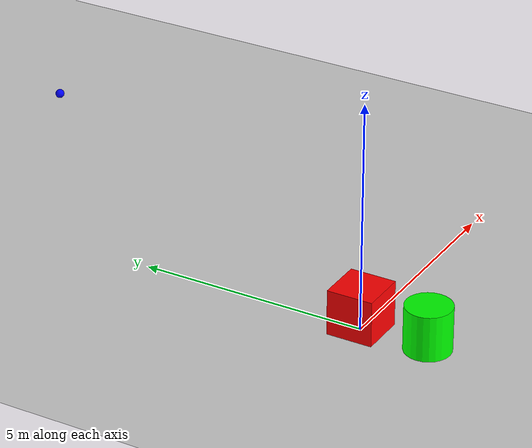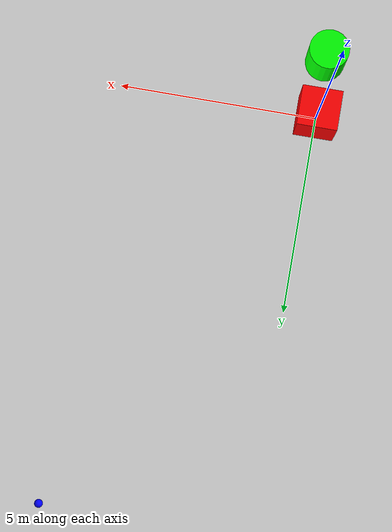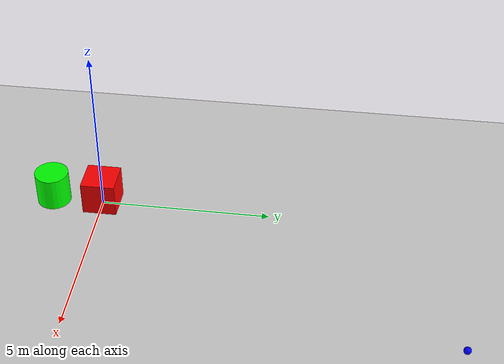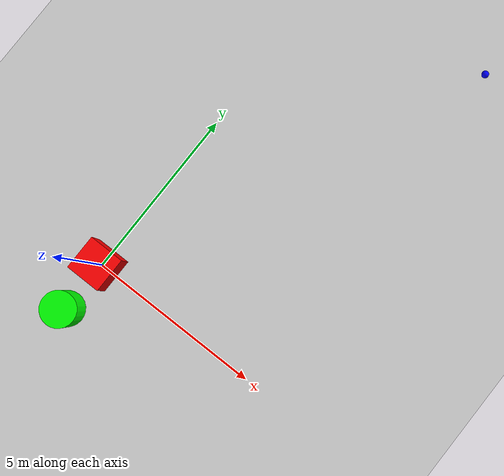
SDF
<?xml version="1.0" ?>
<!--

Try moving a model:

    ign service -s /world/shapes/set_pose --reqtype ignition.msgs.Pose --reptype ignition.msgs.Boolean --timeout 300 --req 'name: "box", position: {z: 5.0}'

-->
<sdf version="1.6">
  <world name="shapes">
    <physics name="1ms" type="ignored">
      <max_step_size>0.001</max_step_size>
      <real_time_factor>1.0</real_time_factor>
    </physics>
    <plugin
      filename="libignition-gazebo-physics-system.so"
      name="ignition::gazebo::systems::Physics">
    </plugin>
    <plugin
      filename="libignition-gazebo-user-commands-system.so"
      name="ignition::gazebo::systems::UserCommands">
    </plugin>
    <plugin
      filename="libignition-gazebo-scene-broadcaster-system.so"
      name="ignition::gazebo::systems::SceneBroadcaster">
    </plugin>

    <scene>
      <ambient>1.0 1.0 1.0</ambient>
      <background>0.8 0.8 0.8</background>
    </scene>

    <gui fullscreen="0">

      <!-- 3D scene -->
      <plugin filename="GzScene3D" name="3D View">
        <ignition-gui>
          <title>3D View</title>
          <property type="bool" key="showTitleBar">false</property>
          <property type="string" key="state">docked</property>
        </ignition-gui>

        <engine>ogre2</engine>
        <scene>scene</scene>
        <ambient_light>1.0 1.0 1.0</ambient_light>
        <background_color>0.8 0.8 0.8</background_color>
        <camera_pose>-6 0 6 0 0.5 0</camera_pose>
      </plugin>

      <!-- World control -->
      <plugin filename="WorldControl" name="World control">
        <ignition-gui>
          <title>World control</title>
          <property type="bool" key="showTitleBar">false</property>
          <property type="bool" key="resizable">false</property>
          <property type="double" key="height">72</property>
          <property type="double" key="width">121</property>
          <property type="double" key="z">1</property>

          <property type="string" key="state">floating</property>
          <anchors target="3D View">
            <line own="left" target="left"/>
            <line own="bottom" target="bottom"/>
          </anchors>
        </ignition-gui>

        <play_pause>true</play_pause>
        <step>true</step>
        <start_paused>true</start_paused>
        <service>/world/shapes/control</service>
        <stats_topic>/world/shapes/stats</stats_topic>

      </plugin>

      <!-- World statistics -->
      <plugin filename="WorldStats" name="World stats">
        <ignition-gui>
          <title>World stats</title>
          <property type="bool" key="showTitleBar">false</property>
          <property type="bool" key="resizable">false</property>
          <property type="double" key="height">110</property>
          <property type="double" key="width">290</property>
          <property type="double" key="z">1</property>

          <property type="string" key="state">floating</property>
          <anchors target="3D View">
            <line own="right" target="right"/>
            <line own="bottom" target="bottom"/>
          </anchors>
        </ignition-gui>

        <sim_time>true</sim_time>
        <real_time>true</real_time>
        <real_time_factor>true</real_time_factor>
        <iterations>true</iterations>
        <topic>/world/shapes/stats</topic>

      </plugin>

      <!-- Entity tree -->
      <plugin filename="EntityTree" name="Entity tree">
        <ignition-gui>
          <property type="bool" key="showTitleBar">false</property>
          <property type="string" key="state">docked</property>
        </ignition-gui>
      </plugin>
      <plugin filename="ComponentInspector" name="Component inspector">
      </plugin>

      <!-- Transform Control -->
      <plugin filename="TransformControl" name="Transform Control">
      </plugin>

    </gui>

    <light type="directional" name="sun">
      <cast_shadows>true</cast_shadows>
      <pose>0 0 10 0 0 0</pose>
      <diffuse>0.8 0.8 0.8 1</diffuse>
      <specular>0.8 0.8 0.8 1</specular>
      <attenuation>
        <range>1000</range>
        <constant>0.9</constant>
        <linear>0.01</linear>
        <quadratic>0.001</quadratic>
      </attenuation>
      <direction>-0.5 0.1 -0.9</direction>
    </light>

    <model name="ground_plane">
      <static>true</static>
      <link name="link">
        <collision name="collision">
          <geometry>
            <plane>
              <normal>0 0 1</normal>
            </plane>
          </geometry>
        </collision>
        <visual name="visual">
          <geometry>
            <plane>
              <normal>0 0 1</normal>
              <size>100 100</size>
            </plane>
          </geometry>
          <material>
            <ambient>0.8 0.8 0.8 1</ambient>
            <diffuse>0.8 0.8 0.8 1</diffuse>
            <specular>0.8 0.8 0.8 1</specular>
          </material>
        </visual>
      </link>
    </model>

    <model name="box">
      <pose>0 0 0.5 0 0 0</pose>
      <link name="box_link">
        <inertial>
          <inertia>
            <ixx>1</ixx>
            <ixy>0</ixy>
            <ixz>0</ixz>
            <iyy>1</iyy>
            <iyz>0</iyz>
            <izz>1</izz>
          </inertia>
          <mass>1.0</mass>
        </inertial>
        <collision name="box_collision">
          <geometry>
            <box>
              <size>1 1 1</size>
            </box>
          </geometry>
        </collision>

        <visual name="box_visual">
          <geometry>
            <box>
              <size>1 1 1</size>
            </box>
          </geometry>
          <material>
            <ambient>1 0 0 1</ambient>
            <diffuse>1 0 0 1</diffuse>
            <specular>1 0 0 1</specular>
          </material>
        </visual>
      </link>
    </model>

    <model name="cylinder">
      <pose>0 -1.5 0.5 0 0 0</pose>
      <link name="cylinder_link">
        <inertial>
          <inertia>
            <ixx>2</ixx>
            <ixy>0</ixy>
            <ixz>0</ixz>
            <iyy>2</iyy>
            <iyz>0</iyz>
            <izz>2</izz>
          </inertia>
          <mass>2.0</mass>
        </inertial>
        <collision name="cylinder_collision">
          <geometry>
            <cylinder>
              <radius>0.5</radius>
              <length>1.0</length>
            </cylinder>
          </geometry>
        </collision>

        <visual name="cylinder_visual">
          <geometry>
            <cylinder>
              <radius>0.5</radius>
              <length>1.0</length>
            </cylinder>
          </geometry>
          <material>
            <ambient>0 1 0 1</ambient>
            <diffuse>0 1 0 1</diffuse>
            <specular>0 1 0 1</specular>
          </material>
        </visual>
      </link>
    </model>

    <model name="sphere">
      <pose>5 10.5 0.5 0 0 0</pose>
      <link name="sphere_link">
        <inertial>
          <inertia>
            <ixx>3</ixx>
            <ixy>0</ixy>
            <ixz>0</ixz>
            <iyy>3</iyy>
            <iyz>0</iyz>
            <izz>3</izz>
          </inertia>
          <mass>3.0</mass>
        </inertial>
        <collision name="sphere_collision">
          <geometry>
            <sphere>
              <radius>0.1</radius>
            </sphere>
          </geometry>
        </collision>

        <visual name="sphere_visual">
          <geometry>
            <sphere>
              <radius>0.1</radius>
            </sphere>
          </geometry>
          <material>
            <ambient>0 0 1 1</ambient>
            <diffuse>0 0 1 1</diffuse>
            <specular>0 0 1 1</specular>
          </material>
        </visual>
      </link>
    </model>
  </world>
</sdf>
